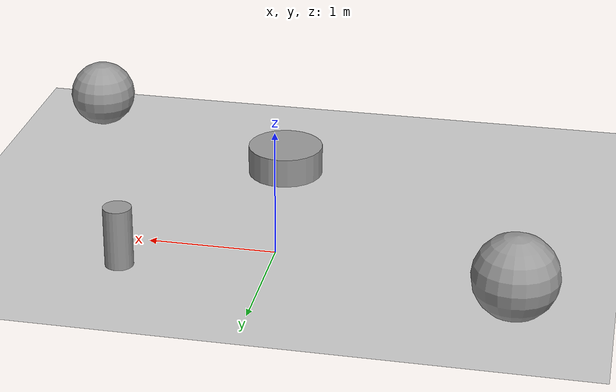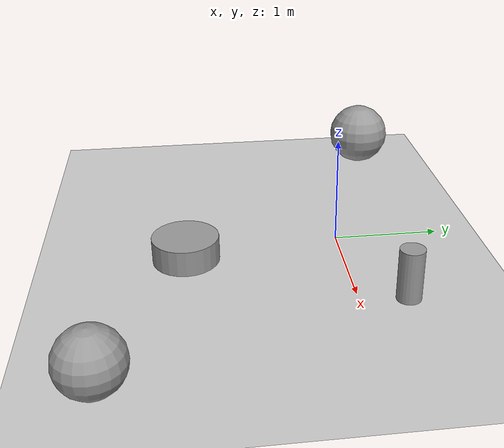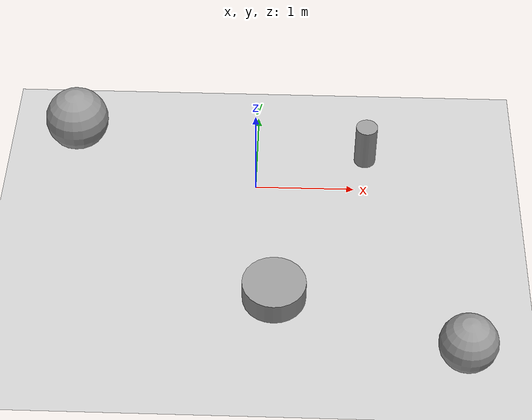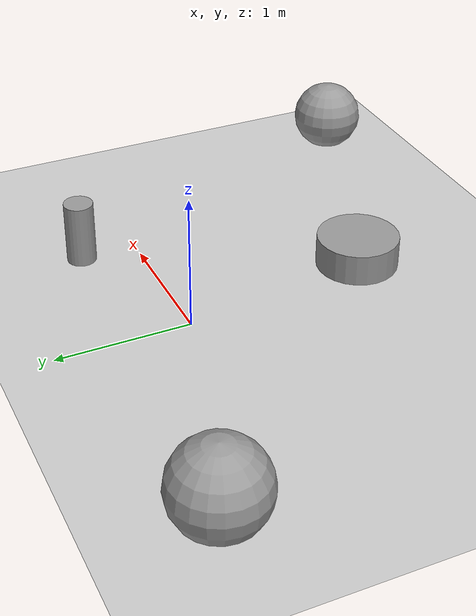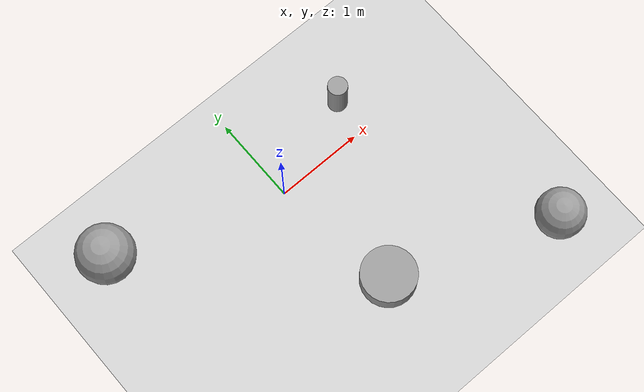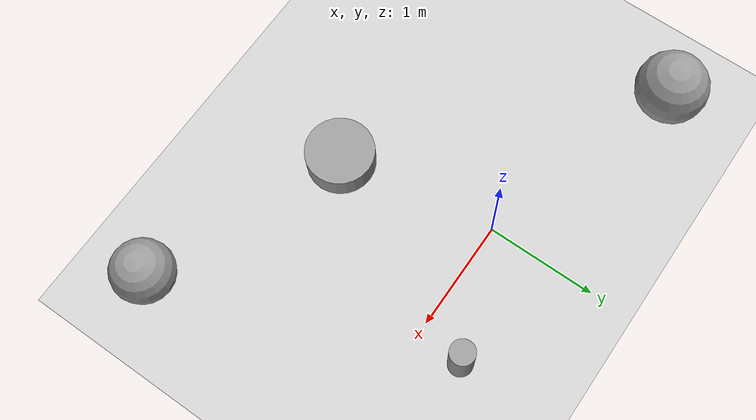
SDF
<sdf version="1.7">
 <world name="default">
  <light name="sun" type="directional">
   <pose>0 0 10 0 -0 0</pose>
   <diffuse>0.8 0.8 0.8 1</diffuse>
   <specular>0.2 0.2 0.2 1</specular>
   <attenuation>
    <range>1000</range>
    <constant>0.9</constant>
    <linear>0.01</linear>
    <quadratic>0.001</quadratic>
   </attenuation>
   <direction>-0.5 0.1 -0.9</direction>
   <spot><inner_angle>0</inner_angle><outer_angle>0</outer_angle><falloff>0</falloff></spot>
  </light>
  <model name="ground_plane">
   <static>1</static>
   <link name="link">
    <collision name="collision">
     <geometry><plane><normal>0 0 1</normal><size>100 100</size></plane></geometry>
     <surface><friction><ode><mu>100</mu><mu2>50</mu2></ode></friction></surface>
    </collision>
    <visual name="visual">
     <cast_shadows>0</cast_shadows>
     <geometry><plane><normal>0 0 1</normal><size>100 100</size></plane></geometry>
     <material>
      <script><uri>file://media/materials/scripts/gazebo.material</uri><name>Gazebo/Grey</name></script>
     </material>
    </visual>
   </link>
  </model>
  <gravity>0 0 -9.8</gravity>
  <magnetic_field>6e-06 2.3e-05 -4.2e-05</magnetic_field>
  <atmosphere type="adiabatic"/>
  <physics type="ode">
   <max_step_size>0.001</max_step_size>
   <real_time_factor>1</real_time_factor>
   <real_time_update_rate>1000</real_time_update_rate>
  </physics>
  <scene><ambient>0.4 0.4 0.4 1</ambient><background>0.7 0.7 0.7 1</background><shadows>1</shadows></scene>
  <audio><device>default</device></audio>
  <spherical_coordinates>
   <surface_model>EARTH_WGS84</surface_model>
   <latitude_deg>0</latitude_deg>
   <longitude_deg>0</longitude_deg>
   <elevation>0</elevation>
   <heading_deg>0</heading_deg>
  </spherical_coordinates>
  <model name="unit_cylinder">
   <pose>0.219853 -1.43752 0.12023 -5e-06 -5e-06 0</pose>
   <link name="link">
    <inertial>
     <mass>1</mass>
     <inertia><ixx>0.145833</ixx><ixy>0</ixy><ixz>0</ixz><iyy>0.145833</iyy><iyz>0</iyz><izz>0.125</izz></inertia>
    </inertial>
    <collision name="collision">
     <geometry><cylinder><radius>0.307795</radius><length>0.240473</length></cylinder></geometry>
    </collision>
    <visual name="visual">
     <geometry><cylinder><radius>0.307795</radius><length>0.240473</length></cylinder></geometry>
     <material>
      <script><name>Gazebo/Grey</name><uri>file://media/materials/scripts/gazebo.material</uri></script>
     </material>
    </visual>
   </link>
  </model>
  <model name="unit_sphere">
   <pose>2.00918 -2.12433 0.277234 0 -0 0</pose>
   <link name="link">
    <inertial>
     <mass>1</mass>
     <inertia><ixx>0.1</ixx><ixy>0</ixy><ixz>0</ixz><iyy>0.1</iyy><iyz>0</iyz><izz>0.1</izz></inertia>
    </inertial>
    <collision name="collision"><geometry><sphere><radius>0.277234</radius></sphere></geometry></collision>
    <visual name="visual">
     <geometry><sphere><radius>0.277234</radius></sphere></geometry>
     <material>
      <script><name>Gazebo/Grey</name><uri>file://media/materials/scripts/gazebo.material</uri></script>
     </material>
    </visual>
   </link>
  </model>
  <model name="unit_cylinder_0">
   <pose>1.11939 0.423389 0.240727 0 0 -2.8e-05</pose>
   <link name="link">
    <inertial>
     <mass>1</mass>
     <inertia><ixx>0.145833</ixx><ixy>0</ixy><ixz>0</ixz><iyy>0.145833</iyy><iyz>0</iyz><izz>0.125</izz></inertia>
    </inertial>
    <collision name="collision">
     <geometry><cylinder><radius>0.110095</radius><length>0.481473</length></cylinder></geometry>
    </collision>
    <visual name="visual">
     <geometry><cylinder><radius>0.110095</radius><length>0.481473</length></cylinder></geometry>
     <material>
      <script><name>Gazebo/Grey</name><uri>file://media/materials/scripts/gazebo.material</uri></script>
     </material>
    </visual>
   </link>
  </model>
  <model name="unit_sphere_0">
   <pose>-1.88046 0.618756 0.324457 0 -0 0</pose>
   <link name="link">
    <inertial>
     <mass>1</mass>
     <inertia><ixx>0.1</ixx><ixy>0</ixy><ixz>0</ixz><iyy>0.1</iyy><iyz>0</iyz><izz>0.1</izz></inertia>
    </inertial>
    <collision name="collision"><geometry><sphere><radius>0.324458</radius></sphere></geometry></collision>
    <visual name="visual">
     <geometry><sphere><radius>0.324458</radius></sphere></geometry>
     <material>
      <script><name>Gazebo/Grey</name><uri>file://media/materials/scripts/gazebo.material</uri></script>
     </material>
    </visual>
   </link>
  </model>
 </world>
</sdf>
